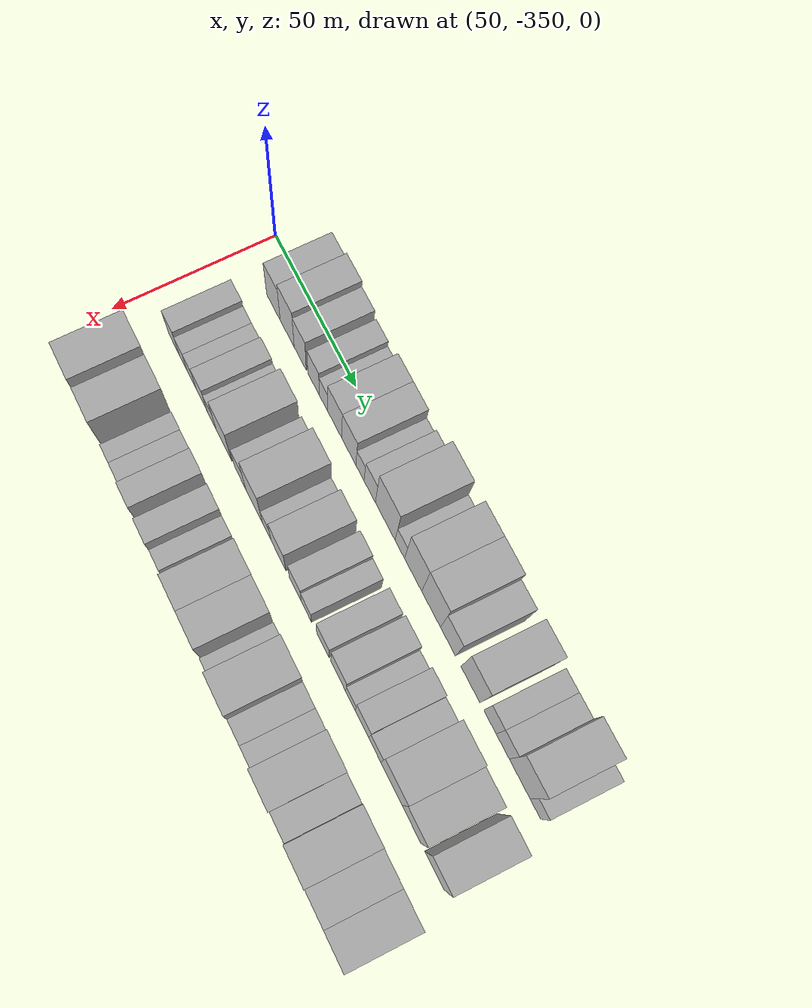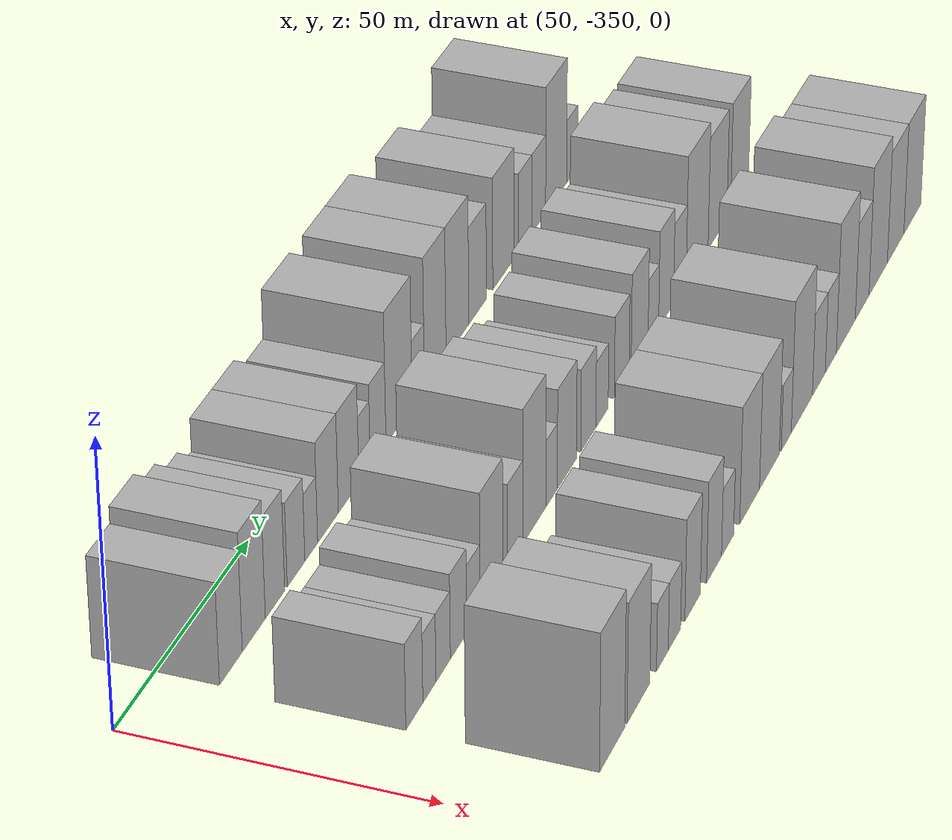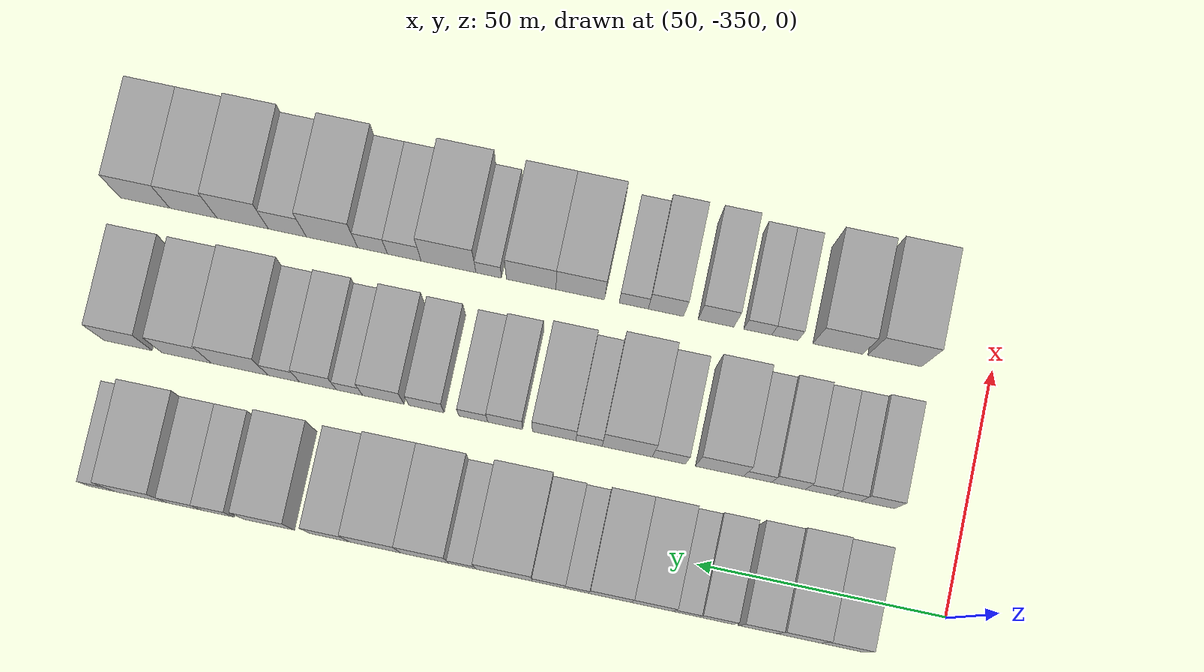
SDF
<sdf version="1.6">
 <world name="default">
  <model name="building_1">
   <static>1</static>
   <pose>50.0000 -330.7343 0 0.000000 0.000000 0.000000</pose>
   <link name="link">
    <pose>0 0 9.00 0 0 0</pose>
    <collision name="collision"><geometry><box><size>20.0000 8.5314 18.0000</size></box></geometry></collision>
    <visual name="visual">
     <cast_shadows>0</cast_shadows>
     <geometry><box><size>20.0000 8.5314 18.0000</size></box></geometry>
     <material>
      <script>
       <uri>model://HANNAS_wall/materials/scripts</uri>
       <uri>model://HANNAS_wall/materials/textures</uri>
       <name>vrc/HANNAS_wall</name>
      </script>
     </material>
    </visual>
   </link>
  </model>
  <model name="building_2">
   <static>1</static>
   <pose>50.0000 -322.0787 0 0.000000 0.000000 0.000000</pose>
   <link name="link">
    <pose>0 0 10.50 0 0 0</pose>
    <collision name="collision"><geometry><box><size>20.0000 8.7798 21.0000</size></box></geometry></collision>
    <visual name="visual">
     <cast_shadows>0</cast_shadows>
     <geometry><box><size>20.0000 8.7798 21.0000</size></box></geometry>
     <material>
      <script>
       <uri>model://HANNAS_wall/materials/scripts</uri>
       <uri>model://HANNAS_wall/materials/textures</uri>
       <name>vrc/HANNAS_wall</name>
      </script>
     </material>
    </visual>
   </link>
  </model>
  <model name="building_3">
   <static>1</static>
   <pose>50.0000 -313.9338 0 0.000000 0.000000 0.000000</pose>
   <link name="link">
    <pose>0 0 9.00 0 0 0</pose>
    <collision name="collision"><geometry><box><size>20.0000 7.5100 18.0000</size></box></geometry></collision>
    <visual name="visual">
     <cast_shadows>0</cast_shadows>
     <geometry><box><size>20.0000 7.5100 18.0000</size></box></geometry>
     <material>
      <script>
       <uri>model://HANNAS_wall/materials/scripts</uri>
       <uri>model://HANNAS_wall/materials/textures</uri>
       <name>vrc/HANNAS_wall</name>
      </script>
     </material>
    </visual>
   </link>
  </model>
  <model name="building_4">
   <static>1</static>
   <pose>50.0000 -305.7042 0 0.000000 0.000000 0.000000</pose>
   <link name="link">
    <pose>0 0 7.50 0 0 0</pose>
    <collision name="collision"><geometry><box><size>20.0000 6.9492 15.0000</size></box></geometry></collision>
    <visual name="visual">
     <cast_shadows>0</cast_shadows>
     <geometry><box><size>20.0000 6.9492 15.0000</size></box></geometry>
     <material>
      <script>
       <uri>model://HANNAS_wall/materials/scripts</uri>
       <uri>model://HANNAS_wall/materials/textures</uri>
       <name>vrc/HANNAS_wall</name>
      </script>
     </material>
    </visual>
   </link>
  </model>
  <model name="building_5">
   <static>1</static>
   <pose>50.0000 -299.6812 0 0.000000 0.000000 0.000000</pose>
   <link name="link">
    <pose>0 0 6.00 0 0 0</pose>
    <collision name="collision"><geometry><box><size>20.0000 5.0968 12.0000</size></box></geometry></collision>
    <visual name="visual">
     <cast_shadows>0</cast_shadows>
     <geometry><box><size>20.0000 5.0968 12.0000</size></box></geometry>
     <material>
      <script>
       <uri>model://HANNAS_wall/materials/scripts</uri>
       <uri>model://HANNAS_wall/materials/textures</uri>
       <name>vrc/HANNAS_wall</name>
      </script>
     </material>
    </visual>
   </link>
  </model>
  <model name="building_6">
   <static>1</static>
   <pose>50.0000 -292.9258 0 0.000000 0.000000 0.000000</pose>
   <link name="link">
    <pose>0 0 9.00 0 0 0</pose>
    <collision name="collision"><geometry><box><size>20.0000 8.4141 18.0000</size></box></geometry></collision>
    <visual name="visual">
     <cast_shadows>0</cast_shadows>
     <geometry><box><size>20.0000 8.4141 18.0000</size></box></geometry>
     <material>
      <script>
       <uri>model://HANNAS_wall/materials/scripts</uri>
       <uri>model://HANNAS_wall/materials/textures</uri>
       <name>vrc/HANNAS_wall</name>
      </script>
     </material>
    </visual>
   </link>
  </model>
  <model name="building_7">
   <static>1</static>
   <pose>50.0000 -284.4672 0 0.000000 0.000000 0.000000</pose>
   <link name="link">
    <pose>0 0 9.00 0 0 0</pose>
    <collision name="collision"><geometry><box><size>20.0000 8.5032 18.0000</size></box></geometry></collision>
    <visual name="visual">
     <cast_shadows>0</cast_shadows>
     <geometry><box><size>20.0000 8.5032 18.0000</size></box></geometry>
     <material>
      <script>
       <uri>model://HANNAS_wall/materials/scripts</uri>
       <uri>model://HANNAS_wall/materials/textures</uri>
       <name>vrc/HANNAS_wall</name>
      </script>
     </material>
    </visual>
   </link>
  </model>
  <model name="building_8">
   <static>1</static>
   <pose>50.0000 -277.8155 0 0.000000 0.000000 0.000000</pose>
   <link name="link">
    <pose>0 0 6.00 0 0 0</pose>
    <collision name="collision"><geometry><box><size>20.0000 4.8003 12.0000</size></box></geometry></collision>
    <visual name="visual">
     <cast_shadows>0</cast_shadows>
     <geometry><box><size>20.0000 4.8003 12.0000</size></box></geometry>
     <material>
      <script>
       <uri>model://HANNAS_wall/materials/scripts</uri>
       <uri>model://HANNAS_wall/materials/textures</uri>
       <name>vrc/HANNAS_wall</name>
      </script>
     </material>
    </visual>
   </link>
  </model>
  <model name="building_9">
   <static>1</static>
   <pose>50.0000 -272.0986 0 0.000000 0.000000 0.000000</pose>
   <link name="link">
    <pose>0 0 7.50 0 0 0</pose>
    <collision name="collision"><geometry><box><size>20.0000 6.6334 15.0000</size></box></geometry></collision>
    <visual name="visual">
     <cast_shadows>0</cast_shadows>
     <geometry><box><size>20.0000 6.6334 15.0000</size></box></geometry>
     <material>
      <script>
       <uri>model://HANNAS_wall/materials/scripts</uri>
       <uri>model://HANNAS_wall/materials/textures</uri>
       <name>vrc/HANNAS_wall</name>
      </script>
     </material>
    </visual>
   </link>
  </model>
  <model name="building_10">
   <static>1</static>
   <pose>50.0000 -263.1139 0 0.000000 0.000000 0.000000</pose>
   <link name="link">
    <pose>0 0 12.00 0 0 0</pose>
    <collision name="collision"><geometry><box><size>20.0000 11.3362 24.0000</size></box></geometry></collision>
    <visual name="visual">
     <cast_shadows>0</cast_shadows>
     <geometry><box><size>20.0000 11.3362 24.0000</size></box></geometry>
     <material>
      <script>
       <uri>model://HANNAS_wall/materials/scripts</uri>
       <uri>model://HANNAS_wall/materials/textures</uri>
       <name>vrc/HANNAS_wall</name>
      </script>
     </material>
    </visual>
   </link>
  </model>
  <model name="building_11">
   <static>1</static>
   <pose>50.0000 -254.7242 0 0.000000 0.000000 0.000000</pose>
   <link name="link">
    <pose>0 0 6.00 0 0 0</pose>
    <collision name="collision"><geometry><box><size>20.0000 5.4431 12.0000</size></box></geometry></collision>
    <visual name="visual">
     <cast_shadows>0</cast_shadows>
     <geometry><box><size>20.0000 5.4431 12.0000</size></box></geometry>
     <material>
      <script>
       <uri>model://HANNAS_wall/materials/scripts</uri>
       <uri>model://HANNAS_wall/materials/textures</uri>
       <name>vrc/HANNAS_wall</name>
      </script>
     </material>
    </visual>
   </link>
  </model>
  <model name="building_12">
   <static>1</static>
   <pose>50.0000 -247.1628 0 0.000000 0.000000 0.000000</pose>
   <link name="link">
    <pose>0 0 12.00 0 0 0</pose>
    <collision name="collision"><geometry><box><size>20.0000 9.6796 24.0000</size></box></geometry></collision>
    <visual name="visual">
     <cast_shadows>0</cast_shadows>
     <geometry><box><size>20.0000 9.6796 24.0000</size></box></geometry>
     <material>
      <script>
       <uri>model://HANNAS_wall/materials/scripts</uri>
       <uri>model://HANNAS_wall/materials/textures</uri>
       <name>vrc/HANNAS_wall</name>
      </script>
     </material>
    </visual>
   </link>
  </model>
  <model name="building_13">
   <static>1</static>
   <pose>50.0000 -237.1223 0 0.000000 0.000000 0.000000</pose>
   <link name="link">
    <pose>0 0 12.00 0 0 0</pose>
    <collision name="collision"><geometry><box><size>20.0000 10.4014 24.0000</size></box></geometry></collision>
    <visual name="visual">
     <cast_shadows>0</cast_shadows>
     <geometry><box><size>20.0000 10.4014 24.0000</size></box></geometry>
     <material>
      <script>
       <uri>model://HANNAS_wall/materials/scripts</uri>
       <uri>model://HANNAS_wall/materials/textures</uri>
       <name>vrc/HANNAS_wall</name>
      </script>
     </material>
    </visual>
   </link>
  </model>
  <model name="building_14">
   <static>1</static>
   <pose>50.0000 -227.8176 0 0.000000 0.000000 0.000000</pose>
   <link name="link">
    <pose>0 0 9.00 0 0 0</pose>
    <collision name="collision"><geometry><box><size>20.0000 8.2081 18.0000</size></box></geometry></collision>
    <visual name="visual">
     <cast_shadows>0</cast_shadows>
     <geometry><box><size>20.0000 8.2081 18.0000</size></box></geometry>
     <material>
      <script>
       <uri>model://HANNAS_wall/materials/scripts</uri>
       <uri>model://HANNAS_wall/materials/textures</uri>
       <name>vrc/HANNAS_wall</name>
      </script>
     </material>
    </visual>
   </link>
  </model>
  <model name="building_15">
   <static>1</static>
   <pose>50.0000 -215.6011 0 0.000000 0.000000 0.000000</pose>
   <link name="link">
    <pose>0 0 10.50 0 0 0</pose>
    <collision name="collision"><geometry><box><size>20.0000 10.2249 21.0000</size></box></geometry></collision>
    <visual name="visual">
     <cast_shadows>0</cast_shadows>
     <geometry><box><size>20.0000 10.2249 21.0000</size></box></geometry>
     <material>
      <script>
       <uri>model://HANNAS_wall/materials/scripts</uri>
       <uri>model://HANNAS_wall/materials/textures</uri>
       <name>vrc/HANNAS_wall</name>
      </script>
     </material>
    </visual>
   </link>
  </model>
  <model name="building_16">
   <static>1</static>
   <pose>50.0000 -205.2394 0 0.000000 0.000000 0.000000</pose>
   <link name="link">
    <pose>0 0 7.50 0 0 0</pose>
    <collision name="collision"><geometry><box><size>20.0000 6.4983 15.0000</size></box></geometry></collision>
    <visual name="visual">
     <cast_shadows>0</cast_shadows>
     <geometry><box><size>20.0000 6.4983 15.0000</size></box></geometry>
     <material>
      <script>
       <uri>model://HANNAS_wall/materials/scripts</uri>
       <uri>model://HANNAS_wall/materials/textures</uri>
       <name>vrc/HANNAS_wall</name>
      </script>
     </material>
    </visual>
   </link>
  </model>
  <model name="building_17">
   <static>1</static>
   <pose>50.0000 -198.5516 0 0.000000 0.000000 0.000000</pose>
   <link name="link">
    <pose>0 0 7.50 0 0 0</pose>
    <collision name="collision"><geometry><box><size>20.0000 6.8773 15.0000</size></box></geometry></collision>
    <visual name="visual">
     <cast_shadows>0</cast_shadows>
     <geometry><box><size>20.0000 6.8773 15.0000</size></box></geometry>
     <material>
      <script>
       <uri>model://HANNAS_wall/materials/scripts</uri>
       <uri>model://HANNAS_wall/materials/textures</uri>
       <name>vrc/HANNAS_wall</name>
      </script>
     </material>
    </visual>
   </link>
  </model>
  <model name="building_18">
   <static>1</static>
   <pose>50.0000 -189.7790 0 0.000000 0.000000 0.000000</pose>
   <link name="link">
    <pose>0 0 12.00 0 0 0</pose>
    <collision name="collision"><geometry><box><size>20.0000 10.6680 24.0000</size></box></geometry></collision>
    <visual name="visual">
     <cast_shadows>0</cast_shadows>
     <geometry><box><size>20.0000 10.6680 24.0000</size></box></geometry>
     <material>
      <script>
       <uri>model://HANNAS_wall/materials/scripts</uri>
       <uri>model://HANNAS_wall/materials/textures</uri>
       <name>vrc/HANNAS_wall</name>
      </script>
     </material>
    </visual>
   </link>
  </model>
  <model name="building_19">
   <static>1</static>
   <pose>50.0000 -181.6937 0 0.000000 0.000000 0.000000</pose>
   <link name="link">
    <pose>0 0 6.00 0 0 0</pose>
    <collision name="collision"><geometry><box><size>20.0000 5.5027 12.0000</size></box></geometry></collision>
    <visual name="visual">
     <cast_shadows>0</cast_shadows>
     <geometry><box><size>20.0000 5.5027 12.0000</size></box></geometry>
     <material>
      <script>
       <uri>model://HANNAS_wall/materials/scripts</uri>
       <uri>model://HANNAS_wall/materials/textures</uri>
       <name>vrc/HANNAS_wall</name>
      </script>
     </material>
    </visual>
   </link>
  </model>
  <model name="building_70">
   <static>1</static>
   <pose>79.0000 -332.5890 0 0.000000 0.000000 0.000000</pose>
   <link name="link">
    <pose>0 0 7.50 0 0 0</pose>
    <collision name="collision"><geometry><box><size>20.0000 6.8221 15.0000</size></box></geometry></collision>
    <visual name="visual">
     <cast_shadows>0</cast_shadows>
     <geometry><box><size>20.0000 6.8221 15.0000</size></box></geometry>
     <material>
      <script>
       <uri>model://HANNAS_wall/materials/scripts</uri>
       <uri>model://HANNAS_wall/materials/textures</uri>
       <name>vrc/HANNAS_wall</name>
      </script>
     </material>
    </visual>
   </link>
  </model>
  <model name="building_71">
   <static>1</static>
   <pose>79.0000 -326.5183 0 0.000000 0.000000 0.000000</pose>
   <link name="link">
    <pose>0 0 6.00 0 0 0</pose>
    <collision name="collision"><geometry><box><size>20.0000 5.3192 12.0000</size></box></geometry></collision>
    <visual name="visual">
     <cast_shadows>0</cast_shadows>
     <geometry><box><size>20.0000 5.3192 12.0000</size></box></geometry>
     <material>
      <script>
       <uri>model://HANNAS_wall/materials/scripts</uri>
       <uri>model://HANNAS_wall/materials/textures</uri>
       <name>vrc/HANNAS_wall</name>
      </script>
     </material>
    </visual>
   </link>
  </model>
  <model name="building_72">
   <static>1</static>
   <pose>79.0000 -320.9196 0 0.000000 0.000000 0.000000</pose>
   <link name="link">
    <pose>0 0 6.00 0 0 0</pose>
    <collision name="collision"><geometry><box><size>20.0000 5.8782 12.0000</size></box></geometry></collision>
    <visual name="visual">
     <cast_shadows>0</cast_shadows>
     <geometry><box><size>20.0000 5.8782 12.0000</size></box></geometry>
     <material>
      <script>
       <uri>model://HANNAS_wall/materials/scripts</uri>
       <uri>model://HANNAS_wall/materials/textures</uri>
       <name>vrc/HANNAS_wall</name>
      </script>
     </material>
    </visual>
   </link>
  </model>
  <model name="building_73">
   <static>1</static>
   <pose>79.0000 -314.5860 0 0.000000 0.000000 0.000000</pose>
   <link name="link">
    <pose>0 0 7.50 0 0 0</pose>
    <collision name="collision"><geometry><box><size>20.0000 6.7890 15.0000</size></box></geometry></collision>
    <visual name="visual">
     <cast_shadows>0</cast_shadows>
     <geometry><box><size>20.0000 6.7890 15.0000</size></box></geometry>
     <material>
      <script>
       <uri>model://HANNAS_wall/materials/scripts</uri>
       <uri>model://HANNAS_wall/materials/textures</uri>
       <name>vrc/HANNAS_wall</name>
      </script>
     </material>
    </visual>
   </link>
  </model>
  <model name="building_74">
   <static>1</static>
   <pose>79.0000 -308.3387 0 0.000000 0.000000 0.000000</pose>
   <link name="link">
    <pose>0 0 6.00 0 0 0</pose>
    <collision name="collision"><geometry><box><size>20.0000 5.7055 12.0000</size></box></geometry></collision>
    <visual name="visual">
     <cast_shadows>0</cast_shadows>
     <geometry><box><size>20.0000 5.7055 12.0000</size></box></geometry>
     <material>
      <script>
       <uri>model://HANNAS_wall/materials/scripts</uri>
       <uri>model://HANNAS_wall/materials/textures</uri>
       <name>vrc/HANNAS_wall</name>
      </script>
     </material>
    </visual>
   </link>
  </model>
  <model name="building_75">
   <static>1</static>
   <pose>79.0000 -300.6091 0 0.000000 0.000000 0.000000</pose>
   <link name="link">
    <pose>0 0 10.50 0 0 0</pose>
    <collision name="collision"><geometry><box><size>20.0000 9.7538 21.0000</size></box></geometry></collision>
    <visual name="visual">
     <cast_shadows>0</cast_shadows>
     <geometry><box><size>20.0000 9.7538 21.0000</size></box></geometry>
     <material>
      <script>
       <uri>model://HANNAS_wall/materials/scripts</uri>
       <uri>model://HANNAS_wall/materials/textures</uri>
       <name>vrc/HANNAS_wall</name>
      </script>
     </material>
    </visual>
   </link>
  </model>
  <model name="building_76">
   <static>1</static>
   <pose>79.0000 -290.3391 0 0.000000 0.000000 0.000000</pose>
   <link name="link">
    <pose>0 0 7.50 0 0 0</pose>
    <collision name="collision"><geometry><box><size>20.0000 6.7860 15.0000</size></box></geometry></collision>
    <visual name="visual">
     <cast_shadows>0</cast_shadows>
     <geometry><box><size>20.0000 6.7860 15.0000</size></box></geometry>
     <material>
      <script>
       <uri>model://HANNAS_wall/materials/scripts</uri>
       <uri>model://HANNAS_wall/materials/textures</uri>
       <name>vrc/HANNAS_wall</name>
      </script>
     </material>
    </visual>
   </link>
  </model>
  <model name="building_77">
   <static>1</static>
   <pose>79.0000 -281.8703 0 0.000000 0.000000 0.000000</pose>
   <link name="link">
    <pose>0 0 12.00 0 0 0</pose>
    <collision name="collision"><geometry><box><size>20.0000 10.1518 24.0000</size></box></geometry></collision>
    <visual name="visual">
     <cast_shadows>0</cast_shadows>
     <geometry><box><size>20.0000 10.1518 24.0000</size></box></geometry>
     <material>
      <script>
       <uri>model://HANNAS_wall/materials/scripts</uri>
       <uri>model://HANNAS_wall/materials/textures</uri>
       <name>vrc/HANNAS_wall</name>
      </script>
     </material>
    </visual>
   </link>
  </model>
  <model name="building_78">
   <static>1</static>
   <pose>79.0000 -274.1346 0 0.000000 0.000000 0.000000</pose>
   <link name="link">
    <pose>0 0 6.00 0 0 0</pose>
    <collision name="collision"><geometry><box><size>20.0000 5.3196 12.0000</size></box></geometry></collision>
    <visual name="visual">
     <cast_shadows>0</cast_shadows>
     <geometry><box><size>20.0000 5.3196 12.0000</size></box></geometry>
     <material>
      <script>
       <uri>model://HANNAS_wall/materials/scripts</uri>
       <uri>model://HANNAS_wall/materials/textures</uri>
       <name>vrc/HANNAS_wall</name>
      </script>
     </material>
    </visual>
   </link>
  </model>
  <model name="building_79">
   <static>1</static>
   <pose>79.0000 -267.0526 0 0.000000 0.000000 0.000000</pose>
   <link name="link">
    <pose>0 0 9.00 0 0 0</pose>
    <collision name="collision"><geometry><box><size>20.0000 8.8443 18.0000</size></box></geometry></collision>
    <visual name="visual">
     <cast_shadows>0</cast_shadows>
     <geometry><box><size>20.0000 8.8443 18.0000</size></box></geometry>
     <material>
      <script>
       <uri>model://HANNAS_wall/materials/scripts</uri>
       <uri>model://HANNAS_wall/materials/textures</uri>
       <name>vrc/HANNAS_wall</name>
      </script>
     </material>
    </visual>
   </link>
  </model>
  <model name="building_80">
   <static>1</static>
   <pose>79.0000 -257.0792 0 0.000000 0.000000 0.000000</pose>
   <link name="link">
    <pose>0 0 7.50 0 0 0</pose>
    <collision name="collision"><geometry><box><size>20.0000 7.1023 15.0000</size></box></geometry></collision>
    <visual name="visual">
     <cast_shadows>0</cast_shadows>
     <geometry><box><size>20.0000 7.1023 15.0000</size></box></geometry>
     <material>
      <script>
       <uri>model://HANNAS_wall/materials/scripts</uri>
       <uri>model://HANNAS_wall/materials/textures</uri>
       <name>vrc/HANNAS_wall</name>
      </script>
     </material>
    </visual>
   </link>
  </model>
  <model name="building_81">
   <static>1</static>
   <pose>79.0000 -250.5901 0 0.000000 0.000000 0.000000</pose>
   <link name="link">
    <pose>0 0 6.00 0 0 0</pose>
    <collision name="collision"><geometry><box><size>20.0000 5.8759 12.0000</size></box></geometry></collision>
    <visual name="visual">
     <cast_shadows>0</cast_shadows>
     <geometry><box><size>20.0000 5.8759 12.0000</size></box></geometry>
     <material>
      <script>
       <uri>model://HANNAS_wall/materials/scripts</uri>
       <uri>model://HANNAS_wall/materials/textures</uri>
       <name>vrc/HANNAS_wall</name>
      </script>
     </material>
    </visual>
   </link>
  </model>
  <model name="building_82">
   <static>1</static>
   <pose>79.0000 -241.0629 0 0.000000 0.000000 0.000000</pose>
   <link name="link">
    <pose>0 0 7.50 0 0 0</pose>
    <collision name="collision"><geometry><box><size>20.0000 7.1786 15.0000</size></box></geometry></collision>
    <visual name="visual">
     <cast_shadows>0</cast_shadows>
     <geometry><box><size>20.0000 7.1786 15.0000</size></box></geometry>
     <material>
      <script>
       <uri>model://HANNAS_wall/materials/scripts</uri>
       <uri>model://HANNAS_wall/materials/textures</uri>
       <name>vrc/HANNAS_wall</name>
      </script>
     </material>
    </visual>
   </link>
  </model>
  <model name="building_83">
   <static>1</static>
   <pose>79.0000 -232.2551 0 0.000000 0.000000 0.000000</pose>
   <link name="link">
    <pose>0 0 9.00 0 0 0</pose>
    <collision name="collision"><geometry><box><size>20.0000 8.4370 18.0000</size></box></geometry></collision>
    <visual name="visual">
     <cast_shadows>0</cast_shadows>
     <geometry><box><size>20.0000 8.4370 18.0000</size></box></geometry>
     <material>
      <script>
       <uri>model://HANNAS_wall/materials/scripts</uri>
       <uri>model://HANNAS_wall/materials/textures</uri>
       <name>vrc/HANNAS_wall</name>
      </script>
     </material>
    </visual>
   </link>
  </model>
  <model name="building_84">
   <static>1</static>
   <pose>79.0000 -225.3695 0 0.000000 0.000000 0.000000</pose>
   <link name="link">
    <pose>0 0 6.00 0 0 0</pose>
    <collision name="collision"><geometry><box><size>20.0000 5.3342 12.0000</size></box></geometry></collision>
    <visual name="visual">
     <cast_shadows>0</cast_shadows>
     <geometry><box><size>20.0000 5.3342 12.0000</size></box></geometry>
     <material>
      <script>
       <uri>model://HANNAS_wall/materials/scripts</uri>
       <uri>model://HANNAS_wall/materials/textures</uri>
       <name>vrc/HANNAS_wall</name>
      </script>
     </material>
    </visual>
   </link>
  </model>
  <model name="building_85">
   <static>1</static>
   <pose>79.0000 -218.9221 0 0.000000 0.000000 0.000000</pose>
   <link name="link">
    <pose>0 0 9.00 0 0 0</pose>
    <collision name="collision"><geometry><box><size>20.0000 7.5606 18.0000</size></box></geometry></collision>
    <visual name="visual">
     <cast_shadows>0</cast_shadows>
     <geometry><box><size>20.0000 7.5606 18.0000</size></box></geometry>
     <material>
      <script>
       <uri>model://HANNAS_wall/materials/scripts</uri>
       <uri>model://HANNAS_wall/materials/textures</uri>
       <name>vrc/HANNAS_wall</name>
      </script>
     </material>
    </visual>
   </link>
  </model>
  <model name="building_86">
   <static>1</static>
   <pose>79.0000 -211.8771 0 0.000000 0.000000 0.000000</pose>
   <link name="link">
    <pose>0 0 7.50 0 0 0</pose>
    <collision name="collision"><geometry><box><size>20.0000 6.5294 15.0000</size></box></geometry></collision>
    <visual name="visual">
     <cast_shadows>0</cast_shadows>
     <geometry><box><size>20.0000 6.5294 15.0000</size></box></geometry>
     <material>
      <script>
       <uri>model://HANNAS_wall/materials/scripts</uri>
       <uri>model://HANNAS_wall/materials/textures</uri>
       <name>vrc/HANNAS_wall</name>
      </script>
     </material>
    </visual>
   </link>
  </model>
  <model name="building_87">
   <static>1</static>
   <pose>79.0000 -202.8083 0 0.000000 0.000000 0.000000</pose>
   <link name="link">
    <pose>0 0 12.00 0 0 0</pose>
    <collision name="collision"><geometry><box><size>20.0000 11.6082 24.0000</size></box></geometry></collision>
    <visual name="visual">
     <cast_shadows>0</cast_shadows>
     <geometry><box><size>20.0000 11.6082 24.0000</size></box></geometry>
     <material>
      <script>
       <uri>model://HANNAS_wall/materials/scripts</uri>
       <uri>model://HANNAS_wall/materials/textures</uri>
       <name>vrc/HANNAS_wall</name>
      </script>
     </material>
    </visual>
   </link>
  </model>
  <model name="building_88">
   <static>1</static>
   <pose>79.0000 -191.9205 0 0.000000 0.000000 0.000000</pose>
   <link name="link">
    <pose>0 0 10.50 0 0 0</pose>
    <collision name="collision"><geometry><box><size>20.0000 10.1675 21.0000</size></box></geometry></collision>
    <visual name="visual">
     <cast_shadows>0</cast_shadows>
     <geometry><box><size>20.0000 10.1675 21.0000</size></box></geometry>
     <material>
      <script>
       <uri>model://HANNAS_wall/materials/scripts</uri>
       <uri>model://HANNAS_wall/materials/textures</uri>
       <name>vrc/HANNAS_wall</name>
      </script>
     </material>
    </visual>
   </link>
  </model>
  <model name="building_89">
   <static>1</static>
   <pose>79.0000 -179.9089 0 0.000000 0.000000 0.000000</pose>
   <link name="link">
    <pose>0 0 10.50 0 0 0</pose>
    <collision name="collision"><geometry><box><size>20.0000 9.8557 21.0000</size></box></geometry></collision>
    <visual name="visual">
     <cast_shadows>0</cast_shadows>
     <geometry><box><size>20.0000 9.8557 21.0000</size></box></geometry>
     <material>
      <script>
       <uri>model://HANNAS_wall/materials/scripts</uri>
       <uri>model://HANNAS_wall/materials/textures</uri>
       <name>vrc/HANNAS_wall</name>
      </script>
     </material>
    </visual>
   </link>
  </model>
  <model name="building_151">
   <static>1</static>
   <pose>108.0000 -330.5026 0 0.000000 0.000000 0.000000</pose>
   <link name="link">
    <pose>0 0 12.00 0 0 0</pose>
    <collision name="collision"><geometry><box><size>20.0000 10.9948 24.0000</size></box></geometry></collision>
    <visual name="visual">
     <cast_shadows>0</cast_shadows>
     <geometry><box><size>20.0000 10.9948 24.0000</size></box></geometry>
     <material>
      <script>
       <uri>model://HANNAS_wall/materials/scripts</uri>
       <uri>model://HANNAS_wall/materials/textures</uri>
       <name>vrc/HANNAS_wall</name>
      </script>
     </material>
    </visual>
   </link>
  </model>
  <model name="building_152">
   <static>1</static>
   <pose>108.0000 -318.9073 0 0.000000 0.000000 0.000000</pose>
   <link name="link">
    <pose>0 0 10.50 0 0 0</pose>
    <collision name="collision"><geometry><box><size>20.0000 10.1959 21.0000</size></box></geometry></collision>
    <visual name="visual">
     <cast_shadows>0</cast_shadows>
     <geometry><box><size>20.0000 10.1959 21.0000</size></box></geometry>
     <material>
      <script>
       <uri>model://HANNAS_wall/materials/scripts</uri>
       <uri>model://HANNAS_wall/materials/textures</uri>
       <name>vrc/HANNAS_wall</name>
      </script>
     </material>
    </visual>
   </link>
  </model>
  <model name="building_153">
   <static>1</static>
   <pose>108.0000 -308.1091 0 0.000000 0.000000 0.000000</pose>
   <link name="link">
    <pose>0 0 6.00 0 0 0</pose>
    <collision name="collision"><geometry><box><size>20.0000 5.4005 12.0000</size></box></geometry></collision>
    <visual name="visual">
     <cast_shadows>0</cast_shadows>
     <geometry><box><size>20.0000 5.4005 12.0000</size></box></geometry>
     <material>
      <script>
       <uri>model://HANNAS_wall/materials/scripts</uri>
       <uri>model://HANNAS_wall/materials/textures</uri>
       <name>vrc/HANNAS_wall</name>
      </script>
     </material>
    </visual>
   </link>
  </model>
  <model name="building_154">
   <static>1</static>
   <pose>108.0000 -302.5524 0 0.000000 0.000000 0.000000</pose>
   <link name="link">
    <pose>0 0 6.00 0 0 0</pose>
    <collision name="collision"><geometry><box><size>20.0000 5.7129 12.0000</size></box></geometry></collision>
    <visual name="visual">
     <cast_shadows>0</cast_shadows>
     <geometry><box><size>20.0000 5.7129 12.0000</size></box></geometry>
     <material>
      <script>
       <uri>model://HANNAS_wall/materials/scripts</uri>
       <uri>model://HANNAS_wall/materials/textures</uri>
       <name>vrc/HANNAS_wall</name>
      </script>
     </material>
    </visual>
   </link>
  </model>
  <model name="building_155">
   <static>1</static>
   <pose>108.0000 -294.0409 0 0.000000 0.000000 0.000000</pose>
   <link name="link">
    <pose>0 0 9.00 0 0 0</pose>
    <collision name="collision"><geometry><box><size>20.0000 7.3101 18.0000</size></box></geometry></collision>
    <visual name="visual">
     <cast_shadows>0</cast_shadows>
     <geometry><box><size>20.0000 7.3101 18.0000</size></box></geometry>
     <material>
      <script>
       <uri>model://HANNAS_wall/materials/scripts</uri>
       <uri>model://HANNAS_wall/materials/textures</uri>
       <name>vrc/HANNAS_wall</name>
      </script>
     </material>
    </visual>
   </link>
  </model>
  <model name="building_156">
   <static>1</static>
   <pose>108.0000 -283.7727 0 0.000000 0.000000 0.000000</pose>
   <link name="link">
    <pose>0 0 9.00 0 0 0</pose>
    <collision name="collision"><geometry><box><size>20.0000 7.2261 18.0000</size></box></geometry></collision>
    <visual name="visual">
     <cast_shadows>0</cast_shadows>
     <geometry><box><size>20.0000 7.2261 18.0000</size></box></geometry>
     <material>
      <script>
       <uri>model://HANNAS_wall/materials/scripts</uri>
       <uri>model://HANNAS_wall/materials/textures</uri>
       <name>vrc/HANNAS_wall</name>
      </script>
     </material>
    </visual>
   </link>
  </model>
  <model name="building_157">
   <static>1</static>
   <pose>108.0000 -277.1784 0 0.000000 0.000000 0.000000</pose>
   <link name="link">
    <pose>0 0 6.00 0 0 0</pose>
    <collision name="collision"><geometry><box><size>20.0000 5.9625 12.0000</size></box></geometry></collision>
    <visual name="visual">
     <cast_shadows>0</cast_shadows>
     <geometry><box><size>20.0000 5.9625 12.0000</size></box></geometry>
     <material>
      <script>
       <uri>model://HANNAS_wall/materials/scripts</uri>
       <uri>model://HANNAS_wall/materials/textures</uri>
       <name>vrc/HANNAS_wall</name>
      </script>
     </material>
    </visual>
   </link>
  </model>
  <model name="building_158">
   <static>1</static>
   <pose>108.0000 -266.2271 0 0.000000 0.000000 0.000000</pose>
   <link name="link">
    <pose>0 0 10.50 0 0 0</pose>
    <collision name="collision"><geometry><box><size>20.0000 9.9401 21.0000</size></box></geometry></collision>
    <visual name="visual">
     <cast_shadows>0</cast_shadows>
     <geometry><box><size>20.0000 9.9401 21.0000</size></box></geometry>
     <material>
      <script>
       <uri>model://HANNAS_wall/materials/scripts</uri>
       <uri>model://HANNAS_wall/materials/textures</uri>
       <name>vrc/HANNAS_wall</name>
      </script>
     </material>
    </visual>
   </link>
  </model>
  <model name="building_159">
   <static>1</static>
   <pose>108.0000 -256.1565 0 0.000000 0.000000 0.000000</pose>
   <link name="link">
    <pose>0 0 10.50 0 0 0</pose>
    <collision name="collision"><geometry><box><size>20.0000 10.2012 21.0000</size></box></geometry></collision>
    <visual name="visual">
     <cast_shadows>0</cast_shadows>
     <geometry><box><size>20.0000 10.2012 21.0000</size></box></geometry>
     <material>
      <script>
       <uri>model://HANNAS_wall/materials/scripts</uri>
       <uri>model://HANNAS_wall/materials/textures</uri>
       <name>vrc/HANNAS_wall</name>
      </script>
     </material>
    </visual>
   </link>
  </model>
  <model name="building_160">
   <static>1</static>
   <pose>108.0000 -247.4320 0 0.000000 0.000000 0.000000</pose>
   <link name="link">
    <pose>0 0 6.00 0 0 0</pose>
    <collision name="collision"><geometry><box><size>20.0000 5.2478 12.0000</size></box></geometry></collision>
    <visual name="visual">
     <cast_shadows>0</cast_shadows>
     <geometry><box><size>20.0000 5.2478 12.0000</size></box></geometry>
     <material>
      <script>
       <uri>model://HANNAS_wall/materials/scripts</uri>
       <uri>model://HANNAS_wall/materials/textures</uri>
       <name>vrc/HANNAS_wall</name>
      </script>
     </material>
    </visual>
   </link>
  </model>
  <model name="building_161">
   <static>1</static>
   <pose>108.0000 -239.1694 0 0.000000 0.000000 0.000000</pose>
   <link name="link">
    <pose>0 0 12.00 0 0 0</pose>
    <collision name="collision"><geometry><box><size>20.0000 11.2773 24.0000</size></box></geometry></collision>
    <visual name="visual">
     <cast_shadows>0</cast_shadows>
     <geometry><box><size>20.0000 11.2773 24.0000</size></box></geometry>
     <material>
      <script>
       <uri>model://HANNAS_wall/materials/scripts</uri>
       <uri>model://HANNAS_wall/materials/textures</uri>
       <name>vrc/HANNAS_wall</name>
      </script>
     </material>
    </visual>
   </link>
  </model>
  <model name="building_162">
   <static>1</static>
   <pose>108.0000 -230.0476 0 0.000000 0.000000 0.000000</pose>
   <link name="link">
    <pose>0 0 7.50 0 0 0</pose>
    <collision name="collision"><geometry><box><size>20.0000 6.9663 15.0000</size></box></geometry></collision>
    <visual name="visual">
     <cast_shadows>0</cast_shadows>
     <geometry><box><size>20.0000 6.9663 15.0000</size></box></geometry>
     <material>
      <script>
       <uri>model://HANNAS_wall/materials/scripts</uri>
       <uri>model://HANNAS_wall/materials/textures</uri>
       <name>vrc/HANNAS_wall</name>
      </script>
     </material>
    </visual>
   </link>
  </model>
  <model name="building_163">
   <static>1</static>
   <pose>108.0000 -223.5122 0 0.000000 0.000000 0.000000</pose>
   <link name="link">
    <pose>0 0 7.50 0 0 0</pose>
    <collision name="collision"><geometry><box><size>20.0000 6.1045 15.0000</size></box></geometry></collision>
    <visual name="visual">
     <cast_shadows>0</cast_shadows>
     <geometry><box><size>20.0000 6.1045 15.0000</size></box></geometry>
     <material>
      <script>
       <uri>model://HANNAS_wall/materials/scripts</uri>
       <uri>model://HANNAS_wall/materials/textures</uri>
       <name>vrc/HANNAS_wall</name>
      </script>
     </material>
    </visual>
   </link>
  </model>
  <model name="building_164">
   <static>1</static>
   <pose>108.0000 -215.1420 0 0.000000 0.000000 0.000000</pose>
   <link name="link">
    <pose>0 0 12.00 0 0 0</pose>
    <collision name="collision"><geometry><box><size>20.0000 10.6359 24.0000</size></box></geometry></collision>
    <visual name="visual">
     <cast_shadows>0</cast_shadows>
     <geometry><box><size>20.0000 10.6359 24.0000</size></box></geometry>
     <material>
      <script>
       <uri>model://HANNAS_wall/materials/scripts</uri>
       <uri>model://HANNAS_wall/materials/textures</uri>
       <name>vrc/HANNAS_wall</name>
      </script>
     </material>
    </visual>
   </link>
  </model>
  <model name="building_165">
   <static>1</static>
   <pose>108.0000 -205.9232 0 0.000000 0.000000 0.000000</pose>
   <link name="link">
    <pose>0 0 9.00 0 0 0</pose>
    <collision name="collision"><geometry><box><size>20.0000 7.8017 18.0000</size></box></geometry></collision>
    <visual name="visual">
     <cast_shadows>0</cast_shadows>
     <geometry><box><size>20.0000 7.8017 18.0000</size></box></geometry>
     <material>
      <script>
       <uri>model://HANNAS_wall/materials/scripts</uri>
       <uri>model://HANNAS_wall/materials/textures</uri>
       <name>vrc/HANNAS_wall</name>
      </script>
     </material>
    </visual>
   </link>
  </model>
  <model name="building_166">
   <static>1</static>
   <pose>108.0000 -196.6893 0 0.000000 0.000000 0.000000</pose>
   <link name="link">
    <pose>0 0 12.00 0 0 0</pose>
    <collision name="collision"><geometry><box><size>20.0000 10.6661 24.0000</size></box></geometry></collision>
    <visual name="visual">
     <cast_shadows>0</cast_shadows>
     <geometry><box><size>20.0000 10.6661 24.0000</size></box></geometry>
     <material>
      <script>
       <uri>model://HANNAS_wall/materials/scripts</uri>
       <uri>model://HANNAS_wall/materials/textures</uri>
       <name>vrc/HANNAS_wall</name>
      </script>
     </material>
    </visual>
   </link>
  </model>
  <model name="building_167">
   <static>1</static>
   <pose>108.0000 -186.4470 0 0.000000 0.000000 0.000000</pose>
   <link name="link">
    <pose>0 0 10.50 0 0 0</pose>
    <collision name="collision"><geometry><box><size>20.0000 9.8184 21.0000</size></box></geometry></collision>
    <visual name="visual">
     <cast_shadows>0</cast_shadows>
     <geometry><box><size>20.0000 9.8184 21.0000</size></box></geometry>
     <material>
      <script>
       <uri>model://HANNAS_wall/materials/scripts</uri>
       <uri>model://HANNAS_wall/materials/textures</uri>
       <name>vrc/HANNAS_wall</name>
      </script>
     </material>
    </visual>
   </link>
  </model>
  <model name="building_168">
   <static>1</static>
   <pose>108.0000 -176.4061 0 0.000000 0.000000 0.000000</pose>
   <link name="link">
    <pose>0 0 10.50 0 0 0</pose>
    <collision name="collision"><geometry><box><size>20.0000 10.2634 21.0000</size></box></geometry></collision>
    <visual name="visual">
     <cast_shadows>0</cast_shadows>
     <geometry><box><size>20.0000 10.2634 21.0000</size></box></geometry>
     <material>
      <script>
       <uri>model://HANNAS_wall/materials/scripts</uri>
       <uri>model://HANNAS_wall/materials/textures</uri>
       <name>vrc/HANNAS_wall</name>
      </script>
     </material>
    </visual>
   </link>
  </model>
 </world>
</sdf>
